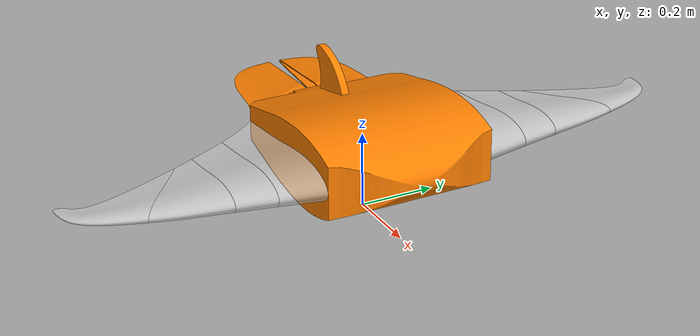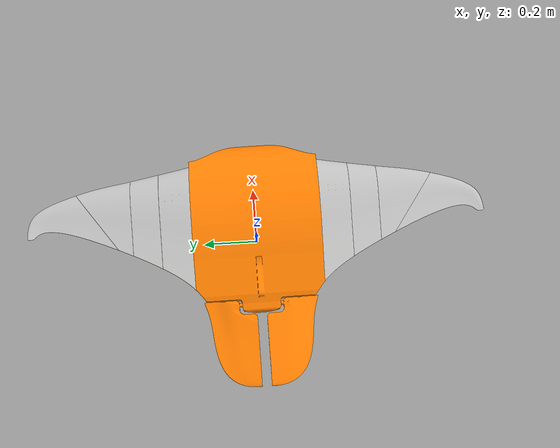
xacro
<?xml version="1.0"?>
<robot name="biomimetic_manta_auv" xmlns:xacro="http://www.ros.org/wiki/xacro">

  <!-- =========================
       Top-level parameters
       ========================= -->
  <!-- Body -->
  <xacro:property name="body_length"             value="0.596"/> <!-- 0.599 m total length -->
  <xacro:property name="body_width"              value="0.390"/>
  <xacro:property name="body_height"             value="0.100"/>

  <!-- Wing-root placement (relative to base_link origin) -->
  <xacro:property name="wing_root_x"             value="0.135445"/>
  <xacro:property name="wing_root_y_from_center" value="0.2217"/>
  <xacro:property name="wing_root_z"             value="0.0"/>

  <!-- Carrier link (left/right identical geometry) -->
  <xacro:property name="carrier_len_x"           value="0.135445"/>
  <xacro:property name="carrier_len_y"           value="0.1296"/>
  <xacro:property name="carrier_thickness"       value="0.020"/>

  <!-- Pitch assembly (y-dimension is long axis along span) -->
  <xacro:property name="pitch_len_x"             value="0.135445"/>
  <xacro:property name="pitch_len_y"             value="0.0845"/>
  <xacro:property name="pitch_thickness"         value="0.015"/>

  <!-- Wingtip proximal segment -->
  <xacro:property name="prox_len_x"              value="0.154808"/>
  <xacro:property name="prox_len_y"              value="0.1814"/>
  <xacro:property name="prox_thickness"          value="0.010"/>

  <!-- Wingtip distal segment (silicone) -->
  <xacro:property name="tip_len_x"               value="0.080"/>
  <xacro:property name="tip_len_y"               value="0.1911"/>
  <xacro:property name="tip_thickness"           value="0.005"/>

  <!-- Tail panels -->
  <xacro:property name="tail_len_x"              value="0.30002"/>
  <xacro:property name="tail_len_y"              value="0.180"/>
  <xacro:property name="tail_thickness"          value="0.010"/>
  <xacro:property name="tail_root_x"             value="-0.250736"/>
  <xacro:property name="tail_root_y"             value="0.080"/>

  <!-- Joint ranges / dynamics -->
  <xacro:property name="carrier_limit_deg"       value="40.0"/>
  <xacro:property name="carrier_effort"          value="114.0"/>
  <xacro:property name="carrier_velocity"        value="3.0"/>
  <xacro:property name="carrier_damping"         value="0.5"/>
  <xacro:property name="carrier_friction"        value="0.1"/>

  <xacro:property name="pitch_limit_deg"         value="45.0"/>
  <xacro:property name="pitch_effort"            value="20.0"/>
  <xacro:property name="pitch_velocity"          value="5.0"/>

  <xacro:property name="tip_limit_deg"           value="45.0"/>
  <xacro:property name="tip_effort"              value="8.0"/>
  <xacro:property name="tip_velocity"            value="10.0"/>
  <xacro:property name="tip_damping"             value="0.2"/>
  <xacro:property name="tip_friction"            value="0.05"/>

  <!-- Internal “end-boost” mimic multiplier (gear coupling proxy) -->
  <xacro:property name="tip_mimic_mult"          value="0.600"/>

  <!-- Tip hinge cant degrees from +Y toward +X (left wing) -->
  <xacro:property name="tip_hinge_cant_deg"      value="55.0"/>

  <!-- Spring stiffness for compliant tip (Gazebo) -->
  <xacro:property name="tip_spring_k"            value="5.0"/>

  <!-- Helpers -->
  <xacro:property name="deg2rad"                 value="${pi/180.0}"/>

  <!-- Derived angles in radians -->
  <xacro:property name="carrier_limit_rad"       value="${carrier_limit_deg*deg2rad}"/>
  <xacro:property name="pitch_limit_rad"         value="${pitch_limit_deg*deg2rad}"/>
  <xacro:property name="tip_limit_rad"           value="${tip_limit_deg*deg2rad}"/>
  <xacro:property name="tip_cant_rad"            value="${tip_hinge_cant_deg*deg2rad}"/>

  <!-- Hinge axis components (left). Right is mirrored by sign. -->
  <xacro:property name="tip_axis_x"              value="${sin(tip_cant_rad)}"/>
  <xacro:property name="tip_axis_y"              value="${cos(tip_cant_rad)}"/>

  <!-- =========================
       Materials
       ========================= -->
  <material name="blue"> <color rgba="0.0 0.4 0.8 1.0"/> </material>
  <material name="grey"> <color rgba="0.7 0.7 0.7 1.0"/> </material>
  <material name="red"> <color rgba="0.8 0.0 0.0 1.0"/> </material>
  <material name="orange"><color rgba="1.0 0.5 0.0 1.0"/> </material>
  <material name="silicone_translucent"> <color rgba="0.9 0.9 0.9 0.6"/> </material>

  <!-- =========================
       Base footprint and base link
       ========================= -->
  <link name="base_footprint"/>
  <joint name="base_footprint_to_base_link" type="fixed">
    <parent link="base_footprint"/>
    <child link="base_link"/>
    <origin xyz="0 0 0.2" rpy="0 0 0"/>
  </joint>

  <!-- =========================
       Base link
       ========================= -->
  <link name="base_link">
    <visual>
      <origin xyz="0 0 0" rpy="0 0 0"/>
      <geometry>
        <mesh filename="package://mobula_auv_description/meshes/visual/body.stl" scale="1 1 1"/>
      </geometry>
      <material name="orange"/>
    </visual>

    <!-- Custom collision mesh -->
    <collision>
      <origin xyz="0 0 0" rpy="0 0 0"/>
      <geometry>
        <mesh filename="package://mobula_auv_description/meshes/collision/Collision-Body.dae"/>
      </geometry>
    </collision>

    <inertial>
      <!-- COM from Onshape (mm -> m) -->
      <origin xyz="0.09 0.000029 -0.04" rpy="0 0 0"/>
      <mass value="7.0"/>
      <!-- Inertia from Onshape -->
      <inertia
        ixx="0.2060"  ixy="5.3296624e-05" ixz="0.01710"
        iyy="0.2008"  iyz="-7.782092e-06"
        izz="0.3516"/>
    </inertial>
  </link>

  <!-- Gazebo disable self-collision on base_link (still collides with world) -->
  <gazebo reference="base_link">
    <selfCollide>false</selfCollide>
  </gazebo>

  <xacro:macro name="wing" params="side roll_pi name_suffix">

    <!-- Map visual suffix (left/right) to collision suffix (Left/Right) -->
    <xacro:property name="coll_suffix" value="${'Left' if name_suffix == 'left' else 'Right'}"/>

    <!-- Carrier joint (root) -->
    <joint name="joint_to_carrier_${name_suffix}" type="revolute">
      <parent link="base_link"/>
      <child  link="link_carrier_${name_suffix}"/>
      <origin xyz="${wing_root_x} ${side*wing_root_y_from_center} ${wing_root_z}" rpy="${roll_pi} 0 0"/>
      <axis xyz="1 0 0"/>
      <limit lower="${-carrier_limit_rad}" upper="${carrier_limit_rad}"
             effort="${carrier_effort}" velocity="${carrier_velocity}"/>
      <dynamics damping="${carrier_damping}" friction="${carrier_friction}"/>
    </joint>

    <!-- Carrier link -->
    <link name="link_carrier_${name_suffix}">
      <visual>
        <origin xyz="-0.135 -0.221 0" rpy="${-roll_pi} 0 0"/>
        <geometry>
          <mesh filename="package://mobula_auv_description/meshes/visual/wing-1-${name_suffix}.stl"/>
        </geometry>
        <material name="silicone_translucent"/>
      </visual>

      <collision>
        <origin xyz="-0.135 -0.221 0" rpy="${-roll_pi} 0 0"/>
        <geometry>
          <mesh filename="package://mobula_auv_description/meshes/collision/Collision-Carrier-${coll_suffix}.dae"/>
        </geometry>
      </collision>

      <inertial>
        <origin xyz="-0.016175 0.065094 -0.00001" rpy="0 0 0"/>
        <mass value="0.5"/>
        <inertia
          ixx="0.002906" ixy="0.000214409232" ixz="7.28e-10"
          iyy="0.005746" iyz="4.3778e-07"
          izz="0.008294"/>
      </inertial>
    </link>

    <gazebo reference="link_carrier_${name_suffix}">
      <selfCollide>false</selfCollide>
    </gazebo>

    <!-- End-boost (mimic) joint -->
    <joint name="joint_carrier_end_boost_${name_suffix}" type="revolute">
      <parent link="link_carrier_${name_suffix}"/>
      <child  link="link_pitch_assembly_${name_suffix}"/>
      <origin xyz="0 ${carrier_len_y} 0" rpy="0 0 0"/>
      <axis xyz="1 0 0"/>
      <mimic joint="joint_to_carrier_${name_suffix}" multiplier="${tip_mimic_mult}" offset="0"/>
      <limit lower="-0.2" upper="0.2" effort="100.0" velocity="5.0"/>
    </joint>

    <!-- Pitch assembly -->
    <link name="link_pitch_assembly_${name_suffix}">
      <visual>
        <origin xyz="-0.1348 -0.35 0" rpy="${-roll_pi} 0 0"/>
        <geometry>
          <mesh filename="package://mobula_auv_description/meshes/visual/wing-2-${name_suffix}.stl"/>
        </geometry>
        <material name="silicone_translucent"/>
      </visual>

      <collision>
        <origin xyz="-0.1348 -0.35 0" rpy="${-roll_pi} 0 0"/>
        <geometry>
          <mesh filename="package://mobula_auv_description/meshes/collision/Collision-Pitch-Assembly-${coll_suffix}.dae"/>
        </geometry>
      </collision>

      <inertial>
        <origin xyz="0.005537 0.042586 -0.000018" rpy="0 0 0"/>
        <mass value="0.083"/>
        <inertia
          ixx="0.00024067417" ixy="-1.0544874e-05" ixz="3.3305e-08"
          iyy="0.000703447437" iyz="6.2175e-08"
          izz="0.000903830481"/>
      </inertial>
    </link>

    <gazebo reference="link_pitch_assembly_${name_suffix}">
      <selfCollide>false</selfCollide>
    </gazebo>

    <!-- Pitch assembly -> wingtip proximal -->
    <joint name="joint_pitch_assembly_to_wingtip_proximal_${name_suffix}" type="revolute">
      <parent link="link_pitch_assembly_${name_suffix}"/>
      <child  link="link_wingtip_proximal_${name_suffix}"/>
      <origin xyz="0.022013 ${pitch_len_y} 0" rpy="0 0 0"/>
      <axis xyz="0 1 0"/>
      <limit lower="${-pitch_limit_rad}" upper="${pitch_limit_rad}"
             effort="${pitch_effort}" velocity="${pitch_velocity}"/>
      <dynamics damping="0.1"/>
    </joint>

    <!-- Wingtip proximal -->
    <link name="link_wingtip_proximal_${name_suffix}">
      <visual>
        <origin xyz="-0.1571 -0.434 0" rpy="${-roll_pi} 0 0"/>
        <geometry>
          <mesh filename="package://mobula_auv_description/meshes/visual/wing-3-${name_suffix}.stl"/>
        </geometry>
        <material name="silicone_translucent"/>
      </visual>

      <collision>
        <origin xyz="-0.1571 -0.434 0" rpy="${-roll_pi} 0 0"/>
        <geometry>
          <mesh filename="package://mobula_auv_description/meshes/collision/Collision-Tip-Proximal-${coll_suffix}.dae"/>
        </geometry>
      </collision>

      <inertial>
        <origin xyz="-0.022206 0.041862 -0.000019" rpy="0 0 0"/>
        <mass value="0.16"/>
        <inertia
          ixx="0.000712627094" ixy="0.000121079626" ixz="-4.4573e-08"
          iyy="0.000666783208" iyz="1.26727e-07"
          izz="0.001333"/>
      </inertial>
    </link>

    <gazebo reference="link_wingtip_proximal_${name_suffix}">
      <selfCollide>false</selfCollide>
    </gazebo>

    <!-- Compliant hinge -->
    <joint name="joint_wingtip_compliance_${name_suffix}" type="revolute">
      <parent link="link_wingtip_proximal_${name_suffix}"/>
      <child  link="link_wingtip_${name_suffix}"/>
      <origin xyz="0 ${prox_len_y} 0" rpy="0 0 0"/>
      <axis xyz="${side*tip_axis_x} ${side*tip_axis_y} 0"/>
      <limit lower="${-tip_limit_rad}" upper="${tip_limit_rad}"
             effort="${tip_effort}" velocity="${tip_velocity}"/>
      <dynamics damping="${tip_damping}" friction="${tip_friction}"/>
    </joint>

    <!-- Wingtip distal -->
    <link name="link_wingtip_${name_suffix}">
      <visual>
        <origin xyz="-0.1571 -0.615 0" rpy="${-roll_pi} 0 0"/>
        <geometry>
          <mesh filename="package://mobula_auv_description/meshes/visual/wing-4-${name_suffix}.stl"/>
        </geometry>
        <material name="silicone_translucent"/>
      </visual>

      <collision>
        <origin xyz="-0.1571 -0.615 0" rpy="${-roll_pi} 0 0"/>
        <geometry>
          <mesh filename="package://mobula_auv_description/meshes/collision/Collision-Tip-${coll_suffix}.dae"/>
        </geometry>
      </collision>

      <inertial>
        <origin xyz="-0.064169 0.071839 -0.00002" rpy="0 0 0"/>
        <mass value="0.095"/>
        <inertia
          ixx="0.001078" ixy="0.000326253513" ixz="-9.9816e-08"
          iyy="0.000553975458" iyz="1.84891e-07"
          izz="0.001624"/>
      </inertial>
    </link>

    <gazebo reference="link_wingtip_${name_suffix}">
      <selfCollide>false</selfCollide>
    </gazebo>

    <!-- Gazebo compliance spring (joint-level) -->
    <gazebo reference="joint_wingtip_compliance_${name_suffix}">
      <implicitSpringDamper>true</implicitSpringDamper>
      <springStiffness>${tip_spring_k}</springStiffness>
      <springReference>0.0</springReference>
    </gazebo>
  </xacro:macro>

  <!-- =========================
       Instantiate wings (correct lowercase left/right)
       ========================= -->
  <xacro:wing side="1"  roll_pi="0.0"   name_suffix="left"/>
  <xacro:wing side="-1" roll_pi="${pi}" name_suffix="right"/>

  <!-- =========================
       Tail
       ========================= -->
  <joint name="joint_tail_left" type="revolute">
    <parent link="base_link"/>
    <child  link="link_tail_left"/>
    <origin xyz="${tail_root_x} ${ tail_root_y} 0" rpy="0 0 0"/>
    <axis xyz="0 1 0"/>
    <limit lower="${-pitch_limit_rad}" upper="${pitch_limit_rad}" effort="10.0" velocity="2.0"/>
    <dynamics damping="0.1" friction="0.1"/>
  </joint>

  <link name="link_tail_left">
    <visual>
      <origin xyz="0.25 -0.07 0" rpy="0 0 0"/>
      <geometry>
        <mesh filename="package://mobula_auv_description/meshes/visual/tail-left.stl" scale="1 1 1"/>
      </geometry>
      <material name="orange"/>
    </visual>

    <collision>
      <origin xyz="0.25 -0.07 0" rpy="0 0 0"/>
      <geometry>
        <mesh filename="package://mobula_auv_description/meshes/collision/Collision-Tail-Left.dae"/>
      </geometry>
    </collision>

    <inertial>
      <origin xyz="-0.085681 0.012104 -0.000003" rpy="0 0 0"/>
      <mass value="0.375382"/>
      <inertia
        ixx="0.000659579492" ixy="9.720846e-06" ixz="2.00641e-07"
        iyy="0.005407" iyz="7.0887e-08"
        izz="0.006019"/>
    </inertial>
  </link>

  <gazebo reference="link_tail_left">
    <selfCollide>false</selfCollide>
  </gazebo>

  <joint name="joint_tail_right" type="revolute">
    <parent link="base_link"/>
    <child  link="link_tail_right"/>
    <origin xyz="${tail_root_x} ${-tail_root_y} 0" rpy="0 0 0"/>
    <axis xyz="0 1 0"/>
    <limit lower="${-pitch_limit_rad}" upper="${pitch_limit_rad}" effort="10.0" velocity="2.0"/>
    <dynamics damping="0.1" friction="0.1"/>
  </joint>

  <link name="link_tail_right">
    <visual>
      <origin xyz="0.25 0.07 0" rpy="0 0 0"/>
      <geometry>
        <mesh filename="package://mobula_auv_description/meshes/visual/tail-right.stl" scale="1 1 1"/>
      </geometry>
      <material name="orange"/>
    </visual>

    <collision>
      <origin xyz="0.25 0.07 0" rpy="0 0 0"/>
      <geometry>
        <mesh filename="package://mobula_auv_description/meshes/collision/Collision-Tail-Right.dae"/>
      </geometry>
    </collision>

    <inertial>
      <origin xyz="-0.085681 0.012104 -0.000003" rpy="0 0 0"/>
      <mass value="0.375382"/>
      <inertia
        ixx="0.000659579492" ixy="9.720846e-06" ixz="2.00641e-07"
        iyy="0.005407" iyz="7.0887e-08"
        izz="0.006019"/>
    </inertial>
  </link>

  <gazebo reference="link_tail_right">
    <selfCollide>false</selfCollide>
  </gazebo>

</robot>

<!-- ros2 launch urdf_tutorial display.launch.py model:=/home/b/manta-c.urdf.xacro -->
<!-- ros2 launch mobula_auv_description display.launch.xml -->
